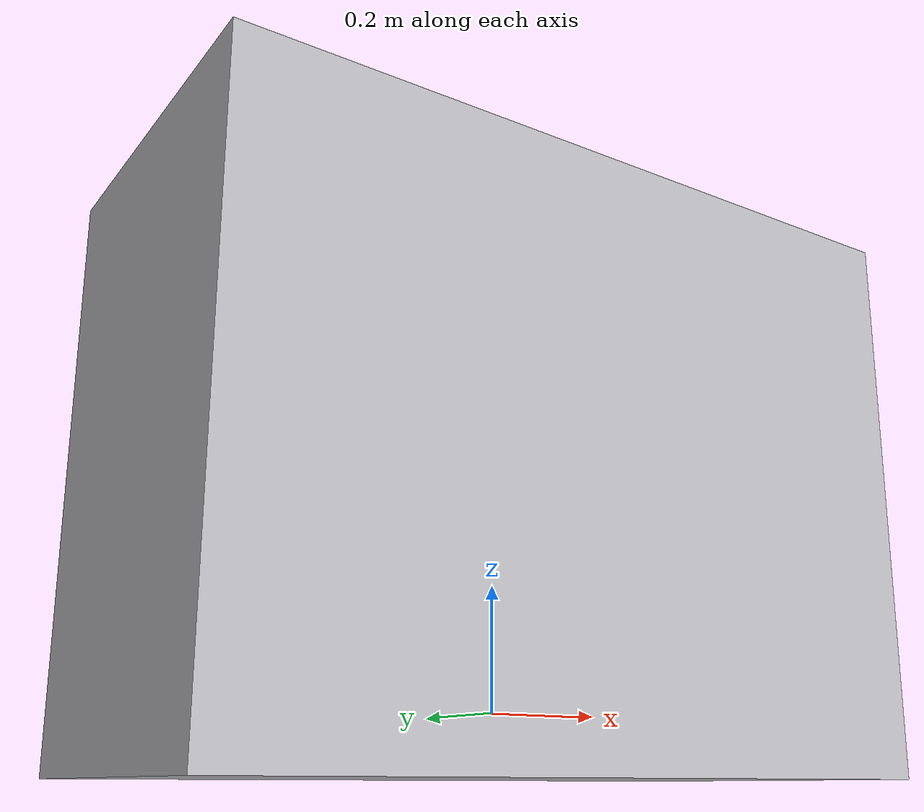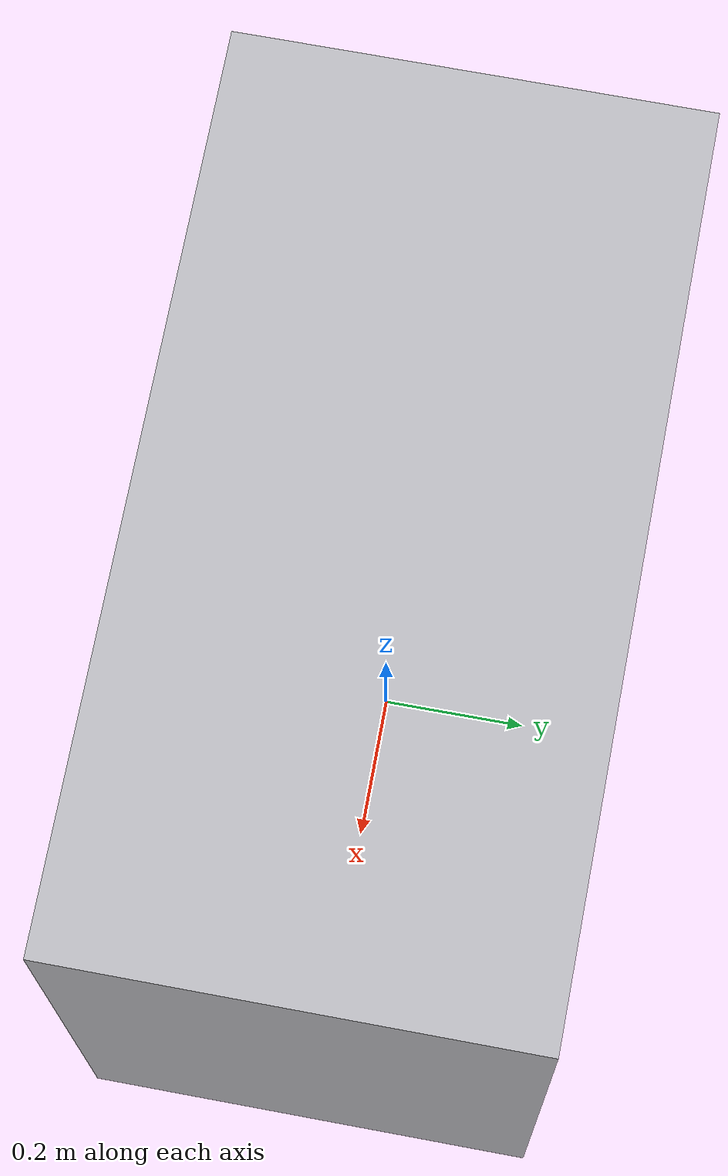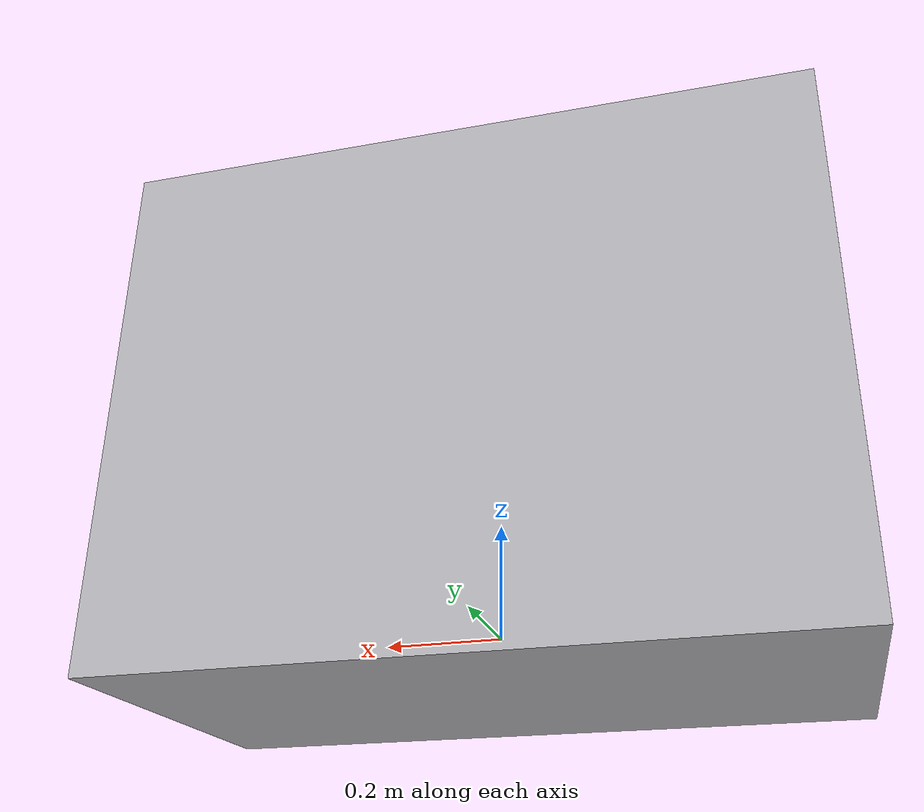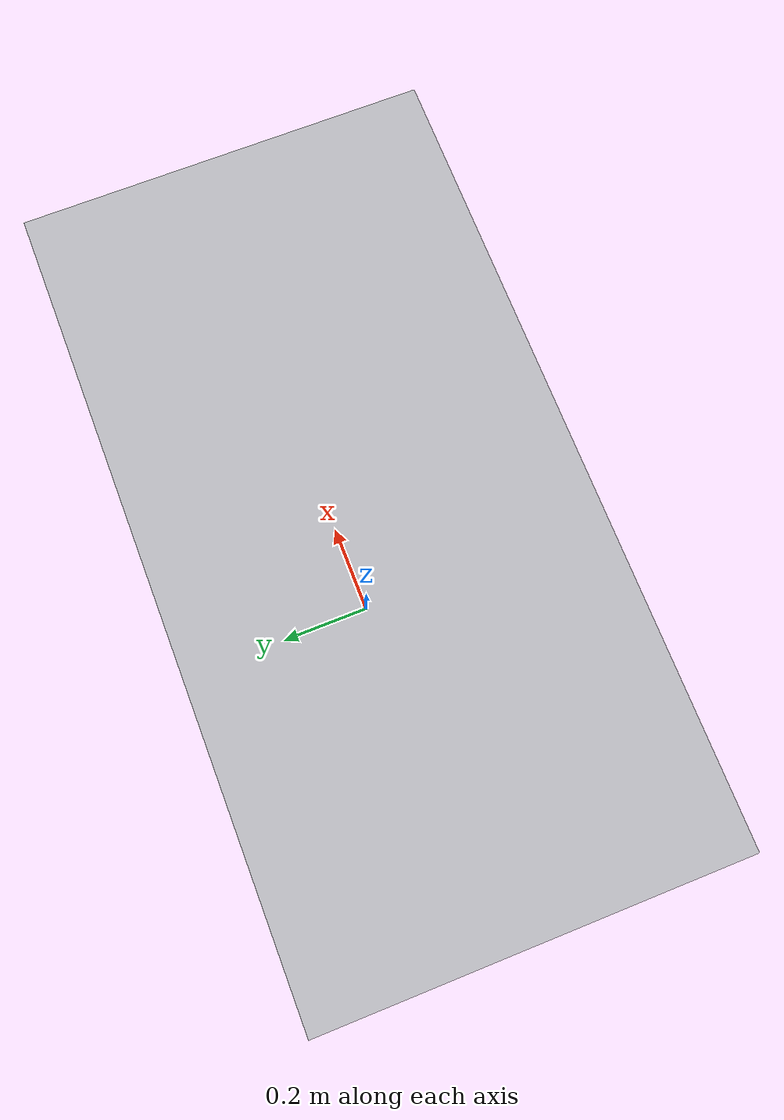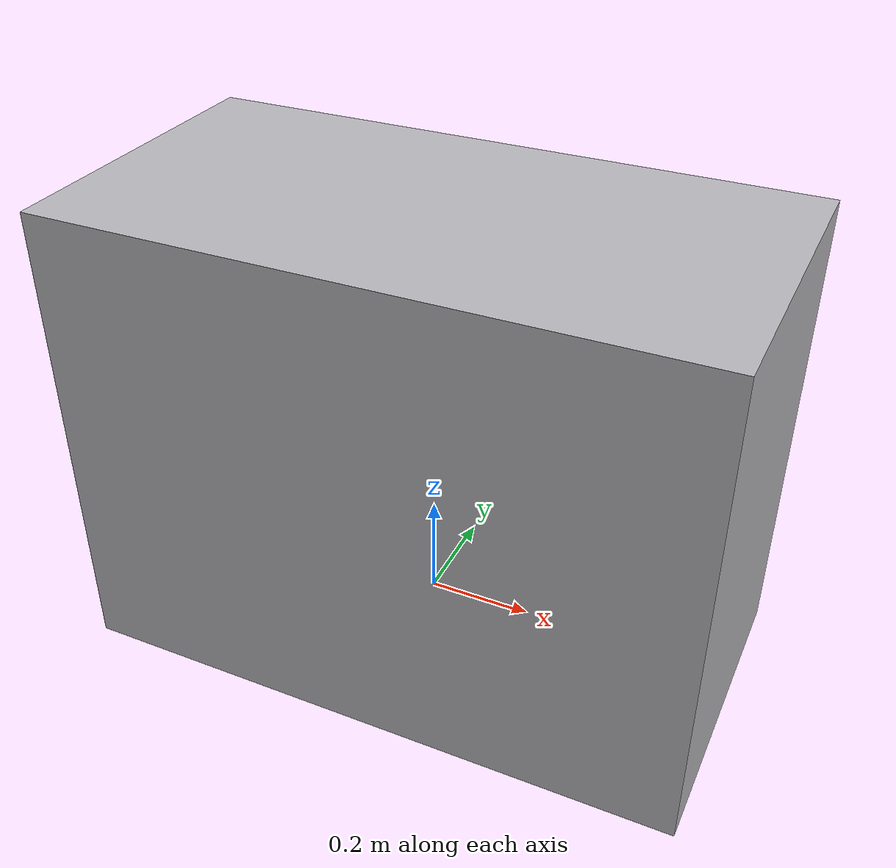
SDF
<?xml version='1.0' encoding='utf-8'?>
<sdf version="1.6">
  <model name="aws_robomaker_residential_KitchenCabinet_01">
    <static>true</static>
    <link name="link">
      <collision name="collision_1">
        <pose>0 0 0.36 0 0 0</pose>
        <geometry>
          <box>
            <size>1.2 0.62 0.92</size>
          </box>
        </geometry>
      </collision>
      <visual name="visual_1">
        <pose>0 0 0.36 0 0 0</pose>
        <geometry>
          <box>
            <size>1.2 0.62 0.92</size>
          </box>
        </geometry>
        <material>
          <ambient>0.72 0.72 0.74 1</ambient>
          <diffuse>0.72 0.72 0.74 1</diffuse>
          <specular>0.08 0.08 0.08 1</specular>
        </material>
      </visual>
    </link>
  </model>
</sdf>
